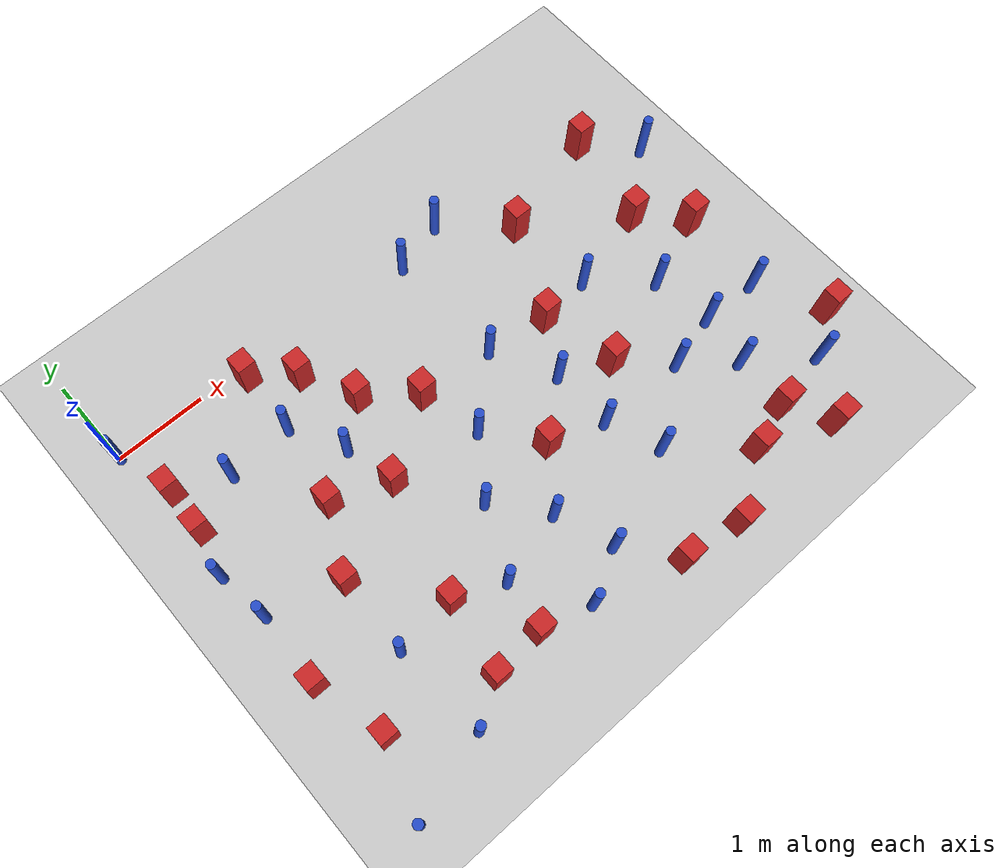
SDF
<sdf version="1.6">
 <world name="default">
  <model name="ground_plane">
   <static>1</static>
   <link name="link">
    <collision name="collision">
     <geometry><plane><normal>0 0 1</normal><size>100 100</size></plane></geometry>
     <surface><friction><ode><mu>100</mu><mu2>50</mu2></ode></friction></surface>
    </collision>
    <visual name="visual">
     <cast_shadows>0</cast_shadows>
     <geometry><plane><normal>0 0 1</normal><size>100 100</size></plane></geometry>
     <material>
      <ambient>1.0 1.0 1.0 1.0</ambient>
      <diffuse>0.8 0.8 0.8 1.0</diffuse>
      <specular>0.01 0.01 0.01 1.000000</specular>
     </material>
    </visual>
   </link>
  </model>
  <model name="NamedLocations">
   <static>true</static>
   <link name="DefaultStart"><pose>8.5 0 0 0 0 3.14</pose></link>
  </model>
  <model name="square_post_obstacle6">
   <static>true</static>
   <pose>0.93513681308 -2.43418573945 8.22691968438e-08 7.2212513382e-06 -7.54495500217e-07 2.29674213826e-05</pose>
   <link name="link">
    <pose>0 0 0.25 0 -0 0</pose>
    <inertial>
     <mass>100</mass>
     <inertia>
      <ixx>0.166667</ixx>
      <ixy>0</ixy>
      <ixz>0</ixz>
      <iyy>0.166667</iyy>
      <iyz>0</iyz>
      <izz>0.166667</izz>
     </inertia>
    </inertial>
    <collision name="collision"><geometry><box><size>.2 .2 .5</size></box></geometry></collision>
    <visual name="visual">
     <geometry><box><size>.2 .2 .5</size></box></geometry>
     <material>
      <script><name>Gazebo/Red</name><uri>file://media/materials/scripts/gazebo.material</uri></script>
     </material>
    </visual>
   </link>
  </model>
  <model name="square_post_obstacle8">
   <static>true</static>
   <pose>5.34493941089 -3.87671803789 8.22691968438e-08 7.2212513382e-06 -7.54495500217e-07 2.29674213826e-05</pose>
   <link name="link">
    <pose>0 0 0.25 0 -0 0</pose>
    <inertial>
     <mass>100</mass>
     <inertia>
      <ixx>0.166667</ixx>
      <ixy>0</ixy>
      <ixz>0</ixz>
      <iyy>0.166667</iyy>
      <iyz>0</iyz>
      <izz>0.166667</izz>
     </inertia>
    </inertial>
    <collision name="collision"><geometry><box><size>.2 .2 .5</size></box></geometry></collision>
    <visual name="visual">
     <geometry><box><size>.2 .2 .5</size></box></geometry>
     <material>
      <script><name>Gazebo/Red</name><uri>file://media/materials/scripts/gazebo.material</uri></script>
     </material>
    </visual>
   </link>
  </model>
  <model name="pole_obstacle9">
   <static>true</static>
   <pose>4.87138048898 -2.88604429344 2.88873142074e-08 -9.90536690245e-09 4.6021994898e-07 -1.20965994966e-07</pose>
   <link name="link">
    <pose>0 0 0.3 0 -0 0</pose>
    <inertial>
     <mass>1</mass>
     <inertia><ixx>0.145833</ixx><ixy>0</ixy><ixz>0</ixz><iyy>0.145833</iyy><iyz>0</iyz><izz>0.125</izz></inertia>
    </inertial>
    <collision name="collision">
     <geometry><cylinder><radius>0.05</radius><length>.6</length></cylinder></geometry>
    </collision>
    <visual name="visual">
     <geometry><cylinder><radius>0.05</radius><length>.6</length></cylinder></geometry>
     <material>
      <script><name>Gazebo/Blue</name><uri>file://media/materials/scripts/gazebo.material</uri></script>
     </material>
    </visual>
   </link>
  </model>
  <model name="pole_obstacle10">
   <static>true</static>
   <pose>6.10980867585 -2.7485158446 2.88873142074e-08 -9.90536690245e-09 4.6021994898e-07 -1.20965994966e-07</pose>
   <link name="link">
    <pose>0 0 0.3 0 -0 0</pose>
    <inertial>
     <mass>1</mass>
     <inertia><ixx>0.145833</ixx><ixy>0</ixy><ixz>0</ixz><iyy>0.145833</iyy><iyz>0</iyz><izz>0.125</izz></inertia>
    </inertial>
    <collision name="collision">
     <geometry><cylinder><radius>0.05</radius><length>.6</length></cylinder></geometry>
    </collision>
    <visual name="visual">
     <geometry><cylinder><radius>0.05</radius><length>.6</length></cylinder></geometry>
     <material>
      <script><name>Gazebo/Blue</name><uri>file://media/materials/scripts/gazebo.material</uri></script>
     </material>
    </visual>
   </link>
  </model>
  <model name="square_post_obstacle20">
   <static>true</static>
   <pose>1.49326711323 -0.159782868147 8.22691968438e-08 7.2212513382e-06 -7.54495500217e-07 2.29674213826e-05</pose>
   <link name="link">
    <pose>0 0 0.25 0 -0 0</pose>
    <inertial>
     <mass>100</mass>
     <inertia>
      <ixx>0.166667</ixx>
      <ixy>0</ixy>
      <ixz>0</ixz>
      <iyy>0.166667</iyy>
      <iyz>0</iyz>
      <izz>0.166667</izz>
     </inertia>
    </inertial>
    <collision name="collision"><geometry><box><size>.2 .2 .5</size></box></geometry></collision>
    <visual name="visual">
     <geometry><box><size>.2 .2 .5</size></box></geometry>
     <material>
      <script><name>Gazebo/Red</name><uri>file://media/materials/scripts/gazebo.material</uri></script>
     </material>
    </visual>
   </link>
  </model>
  <model name="square_post_obstacle22">
   <static>true</static>
   <pose>2.69886987106 -1.46428142879 8.22691968438e-08 7.2212513382e-06 -7.54495500217e-07 2.29674213826e-05</pose>
   <link name="link">
    <pose>0 0 0.25 0 -0 0</pose>
    <inertial>
     <mass>100</mass>
     <inertia>
      <ixx>0.166667</ixx>
      <ixy>0</ixy>
      <ixz>0</ixz>
      <iyy>0.166667</iyy>
      <iyz>0</iyz>
      <izz>0.166667</izz>
     </inertia>
    </inertial>
    <collision name="collision"><geometry><box><size>.2 .2 .5</size></box></geometry></collision>
    <visual name="visual">
     <geometry><box><size>.2 .2 .5</size></box></geometry>
     <material>
      <script><name>Gazebo/Red</name><uri>file://media/materials/scripts/gazebo.material</uri></script>
     </material>
    </visual>
   </link>
  </model>
  <model name="pole_obstacle17">
   <static>true</static>
   <pose>3.87363410356 -2.19998367693 2.88873142074e-08 -9.90536690232e-09 4.6021994898e-07 -1.20965994968e-07</pose>
   <link name="link">
    <pose>0 0 0.3 0 -0 0</pose>
    <inertial>
     <mass>1</mass>
     <inertia><ixx>0.145833</ixx><ixy>0</ixy><ixz>0</ixz><iyy>0.145833</iyy><iyz>0</iyz><izz>0.125</izz></inertia>
    </inertial>
    <collision name="collision">
     <geometry><cylinder><radius>0.05</radius><length>.6</length></cylinder></geometry>
    </collision>
    <visual name="visual">
     <geometry><cylinder><radius>0.05</radius><length>.6</length></cylinder></geometry>
     <material>
      <script><name>Gazebo/Blue</name><uri>file://media/materials/scripts/gazebo.material</uri></script>
     </material>
    </visual>
   </link>
  </model>
  <model name="square_post_obstacle25">
   <static>true</static>
   <pose>0.1925885914 -1.1519375086 8.22691968438e-08 7.2212513382e-06 -7.54495500217e-07 2.29674213826e-05</pose>
   <link name="link">
    <pose>0 0 0.25 0 -0 0</pose>
    <inertial>
     <mass>100</mass>
     <inertia>
      <ixx>0.166667</ixx>
      <ixy>0</ixy>
      <ixz>0</ixz>
      <iyy>0.166667</iyy>
      <iyz>0</iyz>
      <izz>0.166667</izz>
     </inertia>
    </inertial>
    <collision name="collision"><geometry><box><size>.2 .2 .5</size></box></geometry></collision>
    <visual name="visual">
     <geometry><box><size>.2 .2 .5</size></box></geometry>
     <material>
      <script><name>Gazebo/Red</name><uri>file://media/materials/scripts/gazebo.material</uri></script>
     </material>
    </visual>
   </link>
  </model>
  <model name="square_post_obstacle26">
   <static>true</static>
   <pose>6.16501732974 -1.77834047875 8.22691968438e-08 7.2212513382e-06 -7.54495500217e-07 2.29674213826e-05</pose>
   <link name="link">
    <pose>0 0 0.25 0 -0 0</pose>
    <inertial>
     <mass>100</mass>
     <inertia>
      <ixx>0.166667</ixx>
      <ixy>0</ixy>
      <ixz>0</ixz>
      <iyy>0.166667</iyy>
      <iyz>0</iyz>
      <izz>0.166667</izz>
     </inertia>
    </inertial>
    <collision name="collision"><geometry><box><size>.2 .2 .5</size></box></geometry></collision>
    <visual name="visual">
     <geometry><box><size>.2 .2 .5</size></box></geometry>
     <material>
      <script><name>Gazebo/Red</name><uri>file://media/materials/scripts/gazebo.material</uri></script>
     </material>
    </visual>
   </link>
  </model>
  <model name="pole_obstacle18">
   <static>true</static>
   <pose>5.37515510061 -3.29190504266 2.88873142074e-08 -9.90536690245e-09 4.6021994898e-07 -1.20965994966e-07</pose>
   <link name="link">
    <pose>0 0 0.3 0 -0 0</pose>
    <inertial>
     <mass>1</mass>
     <inertia><ixx>0.145833</ixx><ixy>0</ixy><ixz>0</ixz><iyy>0.145833</iyy><iyz>0</iyz><izz>0.125</izz></inertia>
    </inertial>
    <collision name="collision">
     <geometry><cylinder><radius>0.05</radius><length>.6</length></cylinder></geometry>
    </collision>
    <visual name="visual">
     <geometry><cylinder><radius>0.05</radius><length>.6</length></cylinder></geometry>
     <material>
      <script><name>Gazebo/Blue</name><uri>file://media/materials/scripts/gazebo.material</uri></script>
     </material>
    </visual>
   </link>
  </model>
  <model name="pole_obstacle19">
   <static>true</static>
   <pose>2.42500723776 -2.72046479892 2.88873142074e-08 -9.90536690232e-09 4.6021994898e-07 -1.20965994968e-07</pose>
   <link name="link">
    <pose>0 0 0.3 0 -0 0</pose>
    <inertial>
     <mass>1</mass>
     <inertia><ixx>0.145833</ixx><ixy>0</ixy><ixz>0</ixz><iyy>0.145833</iyy><iyz>0</iyz><izz>0.125</izz></inertia>
    </inertial>
    <collision name="collision">
     <geometry><cylinder><radius>0.05</radius><length>.6</length></cylinder></geometry>
    </collision>
    <visual name="visual">
     <geometry><cylinder><radius>0.05</radius><length>.6</length></cylinder></geometry>
     <material>
      <script><name>Gazebo/Blue</name><uri>file://media/materials/scripts/gazebo.material</uri></script>
     </material>
    </visual>
   </link>
  </model>
  <model name="pole_obstacle21">
   <static>true</static>
   <pose>4.80113946811 -1.57781946687 2.88873142074e-08 -9.90536689445e-09 4.60219948999e-07 -1.20965994956e-07</pose>
   <link name="link">
    <pose>0 0 0.3 0 -0 0</pose>
    <inertial>
     <mass>1</mass>
     <inertia><ixx>0.145833</ixx><ixy>0</ixy><ixz>0</ixz><iyy>0.145833</iyy><iyz>0</iyz><izz>0.125</izz></inertia>
    </inertial>
    <collision name="collision">
     <geometry><cylinder><radius>0.05</radius><length>.6</length></cylinder></geometry>
    </collision>
    <visual name="visual">
     <geometry><cylinder><radius>0.05</radius><length>.6</length></cylinder></geometry>
     <material>
      <script><name>Gazebo/Blue</name><uri>file://media/materials/scripts/gazebo.material</uri></script>
     </material>
    </visual>
   </link>
  </model>
  <model name="pole_obstacle27">
   <static>true</static>
   <pose>5.38458817801 -2.08544211234 2.88873142074e-08 -9.90536690245e-09 4.6021994898e-07 -1.20965994966e-07</pose>
   <link name="link">
    <pose>0 0 0.3 0 -0 0</pose>
    <inertial>
     <mass>1</mass>
     <inertia><ixx>0.145833</ixx><ixy>0</ixy><ixz>0</ixz><iyy>0.145833</iyy><iyz>0</iyz><izz>0.125</izz></inertia>
    </inertial>
    <collision name="collision">
     <geometry><cylinder><radius>0.05</radius><length>.6</length></cylinder></geometry>
    </collision>
    <visual name="visual">
     <geometry><cylinder><radius>0.05</radius><length>.6</length></cylinder></geometry>
     <material>
      <script><name>Gazebo/Blue</name><uri>file://media/materials/scripts/gazebo.material</uri></script>
     </material>
    </visual>
   </link>
  </model>
  <model name="square_post_obstacle33">
   <static>true</static>
   <pose>4.21194418895 -1.62396799592 8.22691968438e-08 7.2212513382e-06 -7.54495500217e-07 2.29674213826e-05</pose>
   <link name="link">
    <pose>0 0 0.25 0 -0 0</pose>
    <inertial>
     <mass>100</mass>
     <inertia>
      <ixx>0.166667</ixx>
      <ixy>0</ixy>
      <ixz>0</ixz>
      <iyy>0.166667</iyy>
      <iyz>0</iyz>
      <izz>0.166667</izz>
     </inertia>
    </inertial>
    <collision name="collision"><geometry><box><size>.2 .2 .5</size></box></geometry></collision>
    <visual name="visual">
     <geometry><box><size>.2 .2 .5</size></box></geometry>
     <material>
      <script><name>Gazebo/Red</name><uri>file://media/materials/scripts/gazebo.material</uri></script>
     </material>
    </visual>
   </link>
  </model>
  <model name="square_post_obstacle34">
   <static>true</static>
   <pose>0.130823815018 -2.98307924223 8.22691968438e-08 7.2212513382e-06 -7.54495500217e-07 2.29674213826e-05</pose>
   <link name="link">
    <pose>0 0 0.25 0 -0 0</pose>
    <inertial>
     <mass>100</mass>
     <inertia>
      <ixx>0.166667</ixx>
      <ixy>0</ixy>
      <ixz>0</ixz>
      <iyy>0.166667</iyy>
      <iyz>0</iyz>
      <izz>0.166667</izz>
     </inertia>
    </inertial>
    <collision name="collision"><geometry><box><size>.2 .2 .5</size></box></geometry></collision>
    <visual name="visual">
     <geometry><box><size>.2 .2 .5</size></box></geometry>
     <material>
      <script><name>Gazebo/Red</name><uri>file://media/materials/scripts/gazebo.material</uri></script>
     </material>
    </visual>
   </link>
  </model>
  <model name="square_post_obstacle40">
   <static>true</static>
   <pose>1.90374852456 -0.499919608732 8.22691968438e-08 7.2212513382e-06 -7.54495500217e-07 2.29674213826e-05</pose>
   <link name="link">
    <pose>0 0 0.25 0 -0 0</pose>
    <inertial>
     <mass>100</mass>
     <inertia>
      <ixx>0.166667</ixx>
      <ixy>0</ixy>
      <ixz>0</ixz>
      <iyy>0.166667</iyy>
      <iyz>0</iyz>
      <izz>0.166667</izz>
     </inertia>
    </inertial>
    <collision name="collision"><geometry><box><size>.2 .2 .5</size></box></geometry></collision>
    <visual name="visual">
     <geometry><box><size>.2 .2 .5</size></box></geometry>
     <material>
      <script><name>Gazebo/Red</name><uri>file://media/materials/scripts/gazebo.material</uri></script>
     </material>
    </visual>
   </link>
  </model>
  <model name="pole_obstacle45">
   <static>true</static>
   <pose>0.747380755248 -0.908569419054 2.88873142074e-08 -9.90536689967e-09 4.60219948986e-07 -1.20965994963e-07</pose>
   <link name="link">
    <pose>0 0 0.3 0 -0 0</pose>
    <inertial>
     <mass>1</mass>
     <inertia><ixx>0.145833</ixx><ixy>0</ixy><ixz>0</ixz><iyy>0.145833</iyy><iyz>0</iyz><izz>0.125</izz></inertia>
    </inertial>
    <collision name="collision">
     <geometry><cylinder><radius>0.05</radius><length>.6</length></cylinder></geometry>
    </collision>
    <visual name="visual">
     <geometry><cylinder><radius>0.05</radius><length>.6</length></cylinder></geometry>
     <material>
      <script><name>Gazebo/Blue</name><uri>file://media/materials/scripts/gazebo.material</uri></script>
     </material>
    </visual>
   </link>
  </model>
  <model name="square_post_obstacle42">
   <static>true</static>
   <pose>4.83294932148 -4.03773249772 8.22691968438e-08 7.2212513382e-06 -7.54495500217e-07 2.29674213826e-05</pose>
   <link name="link">
    <pose>0 0 0.25 0 -0 0</pose>
    <inertial>
     <mass>100</mass>
     <inertia>
      <ixx>0.166667</ixx>
      <ixy>0</ixy>
      <ixz>0</ixz>
      <iyy>0.166667</iyy>
      <iyz>0</iyz>
      <izz>0.166667</izz>
     </inertia>
    </inertial>
    <collision name="collision"><geometry><box><size>.2 .2 .5</size></box></geometry></collision>
    <visual name="visual">
     <geometry><box><size>.2 .2 .5</size></box></geometry>
     <material>
      <script><name>Gazebo/Red</name><uri>file://media/materials/scripts/gazebo.material</uri></script>
     </material>
    </visual>
   </link>
  </model>
  <model name="square_post_obstacle48">
   <static>true</static>
   <pose>6.49344892097 -3.45051704758 8.22691968438e-08 7.2212513382e-06 -7.54495500217e-07 2.29674213826e-05</pose>
   <link name="link">
    <pose>0 0 0.25 0 -0 0</pose>
    <inertial>
     <mass>100</mass>
     <inertia>
      <ixx>0.166667</ixx>
      <ixy>0</ixy>
      <ixz>0</ixz>
      <iyy>0.166667</iyy>
      <iyz>0</iyz>
      <izz>0.166667</izz>
     </inertia>
    </inertial>
    <collision name="collision"><geometry><box><size>.2 .2 .5</size></box></geometry></collision>
    <visual name="visual">
     <geometry><box><size>.2 .2 .5</size></box></geometry>
     <material>
      <script><name>Gazebo/Red</name><uri>file://media/materials/scripts/gazebo.material</uri></script>
     </material>
    </visual>
   </link>
  </model>
  <model name="square_post_obstacle54">
   <static>true</static>
   <pose>4.70827987012 -0.625084659395 8.22691968438e-08 7.2212513382e-06 -7.54495500217e-07 2.29674213826e-05</pose>
   <link name="link">
    <pose>0 0 0.25 0 -0 0</pose>
    <inertial>
     <mass>100</mass>
     <inertia>
      <ixx>0.166667</ixx>
      <ixy>0</ixy>
      <ixz>0</ixz>
      <iyy>0.166667</iyy>
      <iyz>0</iyz>
      <izz>0.166667</izz>
     </inertia>
    </inertial>
    <collision name="collision"><geometry><box><size>.2 .2 .5</size></box></geometry></collision>
    <visual name="visual">
     <geometry><box><size>.2 .2 .5</size></box></geometry>
     <material>
      <script><name>Gazebo/Red</name><uri>file://media/materials/scripts/gazebo.material</uri></script>
     </material>
    </visual>
   </link>
  </model>
  <model name="pole_obstacle56">
   <static>true</static>
   <pose>0.070392849277 -1.64936390731 2.88873142074e-08 -9.9053668989e-09 4.60219948988e-07 -1.20965994962e-07</pose>
   <link name="link">
    <pose>0 0 0.3 0 -0 0</pose>
    <inertial>
     <mass>1</mass>
     <inertia><ixx>0.145833</ixx><ixy>0</ixy><ixz>0</ixz><iyy>0.145833</iyy><iyz>0</iyz><izz>0.125</izz></inertia>
    </inertial>
    <collision name="collision">
     <geometry><cylinder><radius>0.05</radius><length>.6</length></cylinder></geometry>
    </collision>
    <visual name="visual">
     <geometry><cylinder><radius>0.05</radius><length>.6</length></cylinder></geometry>
     <material>
      <script><name>Gazebo/Blue</name><uri>file://media/materials/scripts/gazebo.material</uri></script>
     </material>
    </visual>
   </link>
  </model>
  <model name="pole_obstacle57">
   <static>true</static>
   <pose>2.84828007704 -3.24106414899 2.88873142074e-08 -9.90536690232e-09 4.6021994898e-07 -1.20965994968e-07</pose>
   <link name="link">
    <pose>0 0 0.3 0 -0 0</pose>
    <inertial>
     <mass>1</mass>
     <inertia><ixx>0.145833</ixx><ixy>0</ixy><ixz>0</ixz><iyy>0.145833</iyy><iyz>0</iyz><izz>0.125</izz></inertia>
    </inertial>
    <collision name="collision">
     <geometry><cylinder><radius>0.05</radius><length>.6</length></cylinder></geometry>
    </collision>
    <visual name="visual">
     <geometry><cylinder><radius>0.05</radius><length>.6</length></cylinder></geometry>
     <material>
      <script><name>Gazebo/Blue</name><uri>file://media/materials/scripts/gazebo.material</uri></script>
     </material>
    </visual>
   </link>
  </model>
  <model name="square_post_obstacle64">
   <static>true</static>
   <pose>1.9025964745 -1.9742124731 8.22691968438e-08 7.2212513382e-06 -7.54495500217e-07 2.29674213826e-05</pose>
   <link name="link">
    <pose>0 0 0.25 0 -0 0</pose>
    <inertial>
     <mass>100</mass>
     <inertia>
      <ixx>0.166667</ixx>
      <ixy>0</ixy>
      <ixz>0</ixz>
      <iyy>0.166667</iyy>
      <iyz>0</iyz>
      <izz>0.166667</izz>
     </inertia>
    </inertial>
    <collision name="collision"><geometry><box><size>.2 .2 .5</size></box></geometry></collision>
    <visual name="visual">
     <geometry><box><size>.2 .2 .5</size></box></geometry>
     <material>
      <script><name>Gazebo/Red</name><uri>file://media/materials/scripts/gazebo.material</uri></script>
     </material>
    </visual>
   </link>
  </model>
  <model name="pole_obstacle66">
   <static>true</static>
   <pose>0.903014752613 -3.28017848834 2.88873142074e-08 -9.90536689636e-09 4.60219948994e-07 -1.20965994958e-07</pose>
   <link name="link">
    <pose>0 0 0.3 0 -0 0</pose>
    <inertial>
     <mass>1</mass>
     <inertia><ixx>0.145833</ixx><ixy>0</ixy><ixz>0</ixz><iyy>0.145833</iyy><iyz>0</iyz><izz>0.125</izz></inertia>
    </inertial>
    <collision name="collision">
     <geometry><cylinder><radius>0.05</radius><length>.6</length></cylinder></geometry>
    </collision>
    <visual name="visual">
     <geometry><cylinder><radius>0.05</radius><length>.6</length></cylinder></geometry>
     <material>
      <script><name>Gazebo/Blue</name><uri>file://media/materials/scripts/gazebo.material</uri></script>
     </material>
    </visual>
   </link>
  </model>
  <model name="square_post_obstacle74">
   <static>true</static>
   <pose>3.49549920523 -4.35889515165 8.22691968438e-08 7.22125133819e-06 -7.54495500217e-07 2.29674213826e-05</pose>
   <link name="link">
    <pose>0 0 0.25 0 -0 0</pose>
    <inertial>
     <mass>100</mass>
     <inertia>
      <ixx>0.166667</ixx>
      <ixy>0</ixy>
      <ixz>0</ixz>
      <iyy>0.166667</iyy>
      <iyz>0</iyz>
      <izz>0.166667</izz>
     </inertia>
    </inertial>
    <collision name="collision"><geometry><box><size>.2 .2 .5</size></box></geometry></collision>
    <visual name="visual">
     <geometry><box><size>.2 .2 .5</size></box></geometry>
     <material>
      <script><name>Gazebo/Red</name><uri>file://media/materials/scripts/gazebo.material</uri></script>
     </material>
    </visual>
   </link>
  </model>
  <model name="square_post_obstacle76">
   <static>true</static>
   <pose>1.99563817938 -3.95927341196 8.22691968438e-08 7.22125133819e-06 -7.54495500217e-07 2.29674213826e-05</pose>
   <link name="link">
    <pose>0 0 0.25 0 -0 0</pose>
    <inertial>
     <mass>100</mass>
     <inertia>
      <ixx>0.166667</ixx>
      <ixy>0</ixy>
      <ixz>0</ixz>
      <iyy>0.166667</iyy>
      <iyz>0</iyz>
      <izz>0.166667</izz>
     </inertia>
    </inertial>
    <collision name="collision"><geometry><box><size>.2 .2 .5</size></box></geometry></collision>
    <visual name="visual">
     <geometry><box><size>.2 .2 .5</size></box></geometry>
     <material>
      <script><name>Gazebo/Red</name><uri>file://media/materials/scripts/gazebo.material</uri></script>
     </material>
    </visual>
   </link>
  </model>
  <model name="pole_obstacle73">
   <static>true</static>
   <pose>1.76431207199 -1.42830847453 2.88873142074e-08 -9.90536689672e-09 4.60219948993e-07 -1.20965994959e-07</pose>
   <link name="link">
    <pose>0 0 0.3 0 -0 0</pose>
    <inertial>
     <mass>1</mass>
     <inertia><ixx>0.145833</ixx><ixy>0</ixy><ixz>0</ixz><iyy>0.145833</iyy><iyz>0</iyz><izz>0.125</izz></inertia>
    </inertial>
    <collision name="collision">
     <geometry><cylinder><radius>0.05</radius><length>.6</length></cylinder></geometry>
    </collision>
    <visual name="visual">
     <geometry><cylinder><radius>0.05</radius><length>.6</length></cylinder></geometry>
     <material>
      <script><name>Gazebo/Blue</name><uri>file://media/materials/scripts/gazebo.material</uri></script>
     </material>
    </visual>
   </link>
  </model>
  <model name="pole_obstacle81">
   <static>true</static>
   <pose>3.48802088363 -0.209020951684 2.88873142074e-08 -9.90536692243e-09 4.60219948932e-07 -1.20965994987e-07</pose>
   <link name="link">
    <pose>0 0 0.3 0 -0 0</pose>
    <inertial>
     <mass>1</mass>
     <inertia><ixx>0.145833</ixx><ixy>0</ixy><ixz>0</ixz><iyy>0.145833</iyy><iyz>0</iyz><izz>0.125</izz></inertia>
    </inertial>
    <collision name="collision">
     <geometry><cylinder><radius>0.05</radius><length>.6</length></cylinder></geometry>
    </collision>
    <visual name="visual">
     <geometry><cylinder><radius>0.05</radius><length>.6</length></cylinder></geometry>
     <material>
      <script><name>Gazebo/Blue</name><uri>file://media/materials/scripts/gazebo.material</uri></script>
     </material>
    </visual>
   </link>
  </model>
  <model name="pole_obstacle92">
   <static>true</static>
   <pose>0.0717114733378 -4.53419679328 2.88873142074e-08 -9.90536689856e-09 4.60219948989e-07 -1.20965994961e-07</pose>
   <link name="link">
    <pose>0 0 0.3 0 -0 0</pose>
    <inertial>
     <mass>1</mass>
     <inertia><ixx>0.145833</ixx><ixy>0</ixy><ixz>0</ixz><iyy>0.145833</iyy><iyz>0</iyz><izz>0.125</izz></inertia>
    </inertial>
    <collision name="collision">
     <geometry><cylinder><radius>0.05</radius><length>.6</length></cylinder></geometry>
    </collision>
    <visual name="visual">
     <geometry><cylinder><radius>0.05</radius><length>.6</length></cylinder></geometry>
     <material>
      <script><name>Gazebo/Blue</name><uri>file://media/materials/scripts/gazebo.material</uri></script>
     </material>
    </visual>
   </link>
  </model>
  <model name="square_post_obstacle83">
   <static>true</static>
   <pose>0.330089260909 -3.74944186286 8.22691968438e-08 7.22125133819e-06 -7.54495500217e-07 2.29674213826e-05</pose>
   <link name="link">
    <pose>0 0 0.25 0 -0 0</pose>
    <inertial>
     <mass>100</mass>
     <inertia>
      <ixx>0.166667</ixx>
      <ixy>0</ixy>
      <ixz>0</ixz>
      <iyy>0.166667</iyy>
      <iyz>0</iyz>
      <izz>0.166667</izz>
     </inertia>
    </inertial>
    <collision name="collision"><geometry><box><size>.2 .2 .5</size></box></geometry></collision>
    <visual name="visual">
     <geometry><box><size>.2 .2 .5</size></box></geometry>
     <material>
      <script><name>Gazebo/Red</name><uri>file://media/materials/scripts/gazebo.material</uri></script>
     </material>
    </visual>
   </link>
  </model>
  <model name="pole_obstacle101">
   <static>true</static>
   <pose>0.152303115265 -2.21654260974 2.88873142074e-08 -9.90536692387e-09 4.60219948929e-07 -1.20965994988e-07</pose>
   <link name="link">
    <pose>0 0 0.3 0 -0 0</pose>
    <inertial>
     <mass>1</mass>
     <inertia><ixx>0.145833</ixx><ixy>0</ixy><ixz>0</ixz><iyy>0.145833</iyy><iyz>0</iyz><izz>0.125</izz></inertia>
    </inertial>
    <collision name="collision">
     <geometry><cylinder><radius>0.05</radius><length>.6</length></cylinder></geometry>
    </collision>
    <visual name="visual">
     <geometry><cylinder><radius>0.05</radius><length>.6</length></cylinder></geometry>
     <material>
      <script><name>Gazebo/Blue</name><uri>file://media/materials/scripts/gazebo.material</uri></script>
     </material>
    </visual>
   </link>
  </model>
  <model name="pole_obstacle102">
   <static>true</static>
   <pose>3.52672903123 -1.53772527087 2.88873142074e-08 -9.90536689395e-09 4.60219949e-07 -1.20965994953e-07</pose>
   <link name="link">
    <pose>0 0 0.3 0 -0 0</pose>
    <inertial>
     <mass>1</mass>
     <inertia><ixx>0.145833</ixx><ixy>0</ixy><ixz>0</ixz><iyy>0.145833</iyy><iyz>0</iyz><izz>0.125</izz></inertia>
    </inertial>
    <collision name="collision">
     <geometry><cylinder><radius>0.05</radius><length>.6</length></cylinder></geometry>
    </collision>
    <visual name="visual">
     <geometry><cylinder><radius>0.05</radius><length>.6</length></cylinder></geometry>
     <material>
      <script><name>Gazebo/Blue</name><uri>file://media/materials/scripts/gazebo.material</uri></script>
     </material>
    </visual>
   </link>
  </model>
  <model name="square_post_obstacle91">
   <static>true</static>
   <pose>4.3966903159 -2.42623786422 8.22691968438e-08 7.2212513382e-06 -7.54495500217e-07 2.29674213826e-05</pose>
   <link name="link">
    <pose>0 0 0.25 0 -0 0</pose>
    <inertial>
     <mass>100</mass>
     <inertia>
      <ixx>0.166667</ixx>
      <ixy>0</ixy>
      <ixz>0</ixz>
      <iyy>0.166667</iyy>
      <iyz>0</iyz>
      <izz>0.166667</izz>
     </inertia>
    </inertial>
    <collision name="collision"><geometry><box><size>.2 .2 .5</size></box></geometry></collision>
    <visual name="visual">
     <geometry><box><size>.2 .2 .5</size></box></geometry>
     <material>
      <script><name>Gazebo/Red</name><uri>file://media/materials/scripts/gazebo.material</uri></script>
     </material>
    </visual>
   </link>
  </model>
  <model name="pole_obstacle104">
   <static>true</static>
   <pose>0.982224950131 -4.28176323333 2.88873142074e-08 -9.90536689421e-09 4.60219948999e-07 -1.20965994953e-07</pose>
   <link name="link">
    <pose>0 0 0.3 0 -0 0</pose>
    <inertial>
     <mass>1</mass>
     <inertia><ixx>0.145833</ixx><ixy>0</ixy><ixz>0</ixz><iyy>0.145833</iyy><iyz>0</iyz><izz>0.125</izz></inertia>
    </inertial>
    <collision name="collision">
     <geometry><cylinder><radius>0.05</radius><length>.6</length></cylinder></geometry>
    </collision>
    <visual name="visual">
     <geometry><cylinder><radius>0.05</radius><length>.6</length></cylinder></geometry>
     <material>
      <script><name>Gazebo/Blue</name><uri>file://media/materials/scripts/gazebo.material</uri></script>
     </material>
    </visual>
   </link>
  </model>
  <model name="square_post_obstacle93">
   <static>true</static>
   <pose>0.210953410706 -0.651977775744 8.22691968438e-08 7.2212513382e-06 -7.54495500217e-07 2.29674213826e-05</pose>
   <link name="link">
    <pose>0 0 0.25 0 -0 0</pose>
    <inertial>
     <mass>100</mass>
     <inertia>
      <ixx>0.166667</ixx>
      <ixy>0</ixy>
      <ixz>0</ixz>
      <iyy>0.166667</iyy>
      <iyz>0</iyz>
      <izz>0.166667</izz>
     </inertia>
    </inertial>
    <collision name="collision"><geometry><box><size>.2 .2 .5</size></box></geometry></collision>
    <visual name="visual">
     <geometry><box><size>.2 .2 .5</size></box></geometry>
     <material>
      <script><name>Gazebo/Red</name><uri>file://media/materials/scripts/gazebo.material</uri></script>
     </material>
    </visual>
   </link>
  </model>
  <model name="pole_obstacle105">
   <static>true</static>
   <pose>3.06702081155 -3.84328702367 2.88873142074e-08 -9.90536690232e-09 4.6021994898e-07 -1.20965994968e-07</pose>
   <link name="link">
    <pose>0 0 0.3 0 -0 0</pose>
    <inertial>
     <mass>1</mass>
     <inertia><ixx>0.145833</ixx><ixy>0</ixy><ixz>0</ixz><iyy>0.145833</iyy><iyz>0</iyz><izz>0.125</izz></inertia>
    </inertial>
    <collision name="collision">
     <geometry><cylinder><radius>0.05</radius><length>.6</length></cylinder></geometry>
    </collision>
    <visual name="visual">
     <geometry><cylinder><radius>0.05</radius><length>.6</length></cylinder></geometry>
     <material>
      <script><name>Gazebo/Blue</name><uri>file://media/materials/scripts/gazebo.material</uri></script>
     </material>
    </visual>
   </link>
  </model>
  <model name="square_post_obstacle115">
   <static>true</static>
   <pose>1.29108428987 -1.73671378299 8.22691968438e-08 7.2212513382e-06 -7.54495500217e-07 2.29674213826e-05</pose>
   <link name="link">
    <pose>0 0 0.25 0 -0 0</pose>
    <inertial>
     <mass>100</mass>
     <inertia>
      <ixx>0.166667</ixx>
      <ixy>0</ixy>
      <ixz>0</ixz>
      <iyy>0.166667</iyy>
      <iyz>0</iyz>
      <izz>0.166667</izz>
     </inertia>
    </inertial>
    <collision name="collision"><geometry><box><size>.2 .2 .5</size></box></geometry></collision>
    <visual name="visual">
     <geometry><box><size>.2 .2 .5</size></box></geometry>
     <material>
      <script><name>Gazebo/Red</name><uri>file://media/materials/scripts/gazebo.material</uri></script>
     </material>
    </visual>
   </link>
  </model>
  <model name="pole_obstacle134">
   <static>true</static>
   <pose>4.06524627376 -0.0510833529383 2.88873142074e-08 -9.90536689836e-09 4.60219948989e-07 -1.20965994962e-07</pose>
   <link name="link">
    <pose>0 0 0.3 0 -0 0</pose>
    <inertial>
     <mass>1</mass>
     <inertia><ixx>0.145833</ixx><ixy>0</ixy><ixz>0</ixz><iyy>0.145833</iyy><iyz>0</iyz><izz>0.125</izz></inertia>
    </inertial>
    <collision name="collision">
     <geometry><cylinder><radius>0.05</radius><length>.6</length></cylinder></geometry>
    </collision>
    <visual name="visual">
     <geometry><cylinder><radius>0.05</radius><length>.6</length></cylinder></geometry>
     <material>
      <script><name>Gazebo/Blue</name><uri>file://media/materials/scripts/gazebo.material</uri></script>
     </material>
    </visual>
   </link>
  </model>
  <model name="square_post_obstacle124">
   <static>true</static>
   <pose>1.56789279347 -3.21831067892 8.22691968438e-08 7.2212513382e-06 -7.54495500217e-07 2.29674213826e-05</pose>
   <link name="link">
    <pose>0 0 0.25 0 -0 0</pose>
    <inertial>
     <mass>100</mass>
     <inertia>
      <ixx>0.166667</ixx>
      <ixy>0</ixy>
      <ixz>0</ixz>
      <iyy>0.166667</iyy>
      <iyz>0</iyz>
      <izz>0.166667</izz>
     </inertia>
    </inertial>
    <collision name="collision"><geometry><box><size>.2 .2 .5</size></box></geometry></collision>
    <visual name="visual">
     <geometry><box><size>.2 .2 .5</size></box></geometry>
     <material>
      <script><name>Gazebo/Red</name><uri>file://media/materials/scripts/gazebo.material</uri></script>
     </material>
    </visual>
   </link>
  </model>
  <model name="pole_obstacle147">
   <static>true</static>
   <pose>3.8818689171 -2.87183762366 2.88873142074e-08 -9.90536690232e-09 4.6021994898e-07 -1.20965994968e-07</pose>
   <link name="link">
    <pose>0 0 0.3 0 -0 0</pose>
    <inertial>
     <mass>1</mass>
     <inertia><ixx>0.145833</ixx><ixy>0</ixy><ixz>0</ixz><iyy>0.145833</iyy><iyz>0</iyz><izz>0.125</izz></inertia>
    </inertial>
    <collision name="collision">
     <geometry><cylinder><radius>0.05</radius><length>.6</length></cylinder></geometry>
    </collision>
    <visual name="visual">
     <geometry><cylinder><radius>0.05</radius><length>.6</length></cylinder></geometry>
     <material>
      <script><name>Gazebo/Blue</name><uri>file://media/materials/scripts/gazebo.material</uri></script>
     </material>
    </visual>
   </link>
  </model>
  <model name="pole_obstacle156">
   <static>true</static>
   <pose>2.53941003964 -4.11969180566 2.88873142074e-08 -9.90536689859e-09 4.60219948989e-07 -1.20965994961e-07</pose>
   <link name="link">
    <pose>0 0 0.3 0 -0 0</pose>
    <inertial>
     <mass>1</mass>
     <inertia><ixx>0.145833</ixx><ixy>0</ixy><ixz>0</ixz><iyy>0.145833</iyy><iyz>0</iyz><izz>0.125</izz></inertia>
    </inertial>
    <collision name="collision">
     <geometry><cylinder><radius>0.05</radius><length>.6</length></cylinder></geometry>
    </collision>
    <visual name="visual">
     <geometry><cylinder><radius>0.05</radius><length>.6</length></cylinder></geometry>
     <material>
      <script><name>Gazebo/Blue</name><uri>file://media/materials/scripts/gazebo.material</uri></script>
     </material>
    </visual>
   </link>
  </model>
  <model name="square_post_obstacle148">
   <static>true</static>
   <pose>4.16171078026 -4.4468660829 8.22691968438e-08 7.22125133819e-06 -7.54495500217e-07 2.29674213826e-05</pose>
   <link name="link">
    <pose>0 0 0.25 0 -0 0</pose>
    <inertial>
     <mass>100</mass>
     <inertia>
      <ixx>0.166667</ixx>
      <ixy>0</ixy>
      <ixz>0</ixz>
      <iyy>0.166667</iyy>
      <iyz>0</iyz>
      <izz>0.166667</izz>
     </inertia>
    </inertial>
    <collision name="collision"><geometry><box><size>.2 .2 .5</size></box></geometry></collision>
    <visual name="visual">
     <geometry><box><size>.2 .2 .5</size></box></geometry>
     <material>
      <script><name>Gazebo/Red</name><uri>file://media/materials/scripts/gazebo.material</uri></script>
     </material>
    </visual>
   </link>
  </model>
  <model name="square_post_obstacle149">
   <static>true</static>
   <pose>2.19370707433 -1.06528551084 8.22691968438e-08 7.2212513382e-06 -7.54495500217e-07 2.29674213826e-05</pose>
   <link name="link">
    <pose>0 0 0.25 0 -0 0</pose>
    <inertial>
     <mass>100</mass>
     <inertia>
      <ixx>0.166667</ixx>
      <ixy>0</ixy>
      <ixz>0</ixz>
      <iyy>0.166667</iyy>
      <iyz>0</iyz>
      <izz>0.166667</izz>
     </inertia>
    </inertial>
    <collision name="collision"><geometry><box><size>.2 .2 .5</size></box></geometry></collision>
    <visual name="visual">
     <geometry><box><size>.2 .2 .5</size></box></geometry>
     <material>
      <script><name>Gazebo/Red</name><uri>file://media/materials/scripts/gazebo.material</uri></script>
     </material>
    </visual>
   </link>
  </model>
  <model name="pole_obstacle158">
   <static>true</static>
   <pose>6.02373395332 -3.76789317465 2.88873142074e-08 -9.90536690245e-09 4.6021994898e-07 -1.20965994966e-07</pose>
   <link name="link">
    <pose>0 0 0.3 0 -0 0</pose>
    <inertial>
     <mass>1</mass>
     <inertia><ixx>0.145833</ixx><ixy>0</ixy><ixz>0</ixz><iyy>0.145833</iyy><iyz>0</iyz><izz>0.125</izz></inertia>
    </inertial>
    <collision name="collision">
     <geometry><cylinder><radius>0.05</radius><length>.6</length></cylinder></geometry>
    </collision>
    <visual name="visual">
     <geometry><cylinder><radius>0.05</radius><length>.6</length></cylinder></geometry>
     <material>
      <script><name>Gazebo/Blue</name><uri>file://media/materials/scripts/gazebo.material</uri></script>
     </material>
    </visual>
   </link>
  </model>
  <model name="pole_obstacle165">
   <static>true</static>
   <pose>1.45646815641 -0.868964532486 2.88873142074e-08 -9.90536689692e-09 4.60219948993e-07 -1.20965994958e-07</pose>
   <link name="link">
    <pose>0 0 0.3 0 -0 0</pose>
    <inertial>
     <mass>1</mass>
     <inertia><ixx>0.145833</ixx><ixy>0</ixy><ixz>0</ixz><iyy>0.145833</iyy><iyz>0</iyz><izz>0.125</izz></inertia>
    </inertial>
    <collision name="collision">
     <geometry><cylinder><radius>0.05</radius><length>.6</length></cylinder></geometry>
    </collision>
    <visual name="visual">
     <geometry><cylinder><radius>0.05</radius><length>.6</length></cylinder></geometry>
     <material>
      <script><name>Gazebo/Blue</name><uri>file://media/materials/scripts/gazebo.material</uri></script>
     </material>
    </visual>
   </link>
  </model>
  <model name="pole_obstacle168">
   <static>true</static>
   <pose>5.46982633678 -2.73229940086 2.88873142074e-08 -9.90536690245e-09 4.6021994898e-07 -1.20965994966e-07</pose>
   <link name="link">
    <pose>0 0 0.3 0 -0 0</pose>
    <inertial>
     <mass>1</mass>
     <inertia><ixx>0.145833</ixx><ixy>0</ixy><ixz>0</ixz><iyy>0.145833</iyy><iyz>0</iyz><izz>0.125</izz></inertia>
    </inertial>
    <collision name="collision">
     <geometry><cylinder><radius>0.05</radius><length>.6</length></cylinder></geometry>
    </collision>
    <visual name="visual">
     <geometry><cylinder><radius>0.05</radius><length>.6</length></cylinder></geometry>
     <material>
      <script><name>Gazebo/Blue</name><uri>file://media/materials/scripts/gazebo.material</uri></script>
     </material>
    </visual>
   </link>
  </model>
  <model name="square_post_obstacle162">
   <static>true</static>
   <pose>5.73417595443 -1.33211298041 8.22691968438e-08 7.2212513382e-06 -7.54495500217e-07 2.29674213826e-05</pose>
   <link name="link">
    <pose>0 0 0.25 0 -0 0</pose>
    <inertial>
     <mass>100</mass>
     <inertia>
      <ixx>0.166667</ixx>
      <ixy>0</ixy>
      <ixz>0</ixz>
      <iyy>0.166667</iyy>
      <iyz>0</iyz>
      <izz>0.166667</izz>
     </inertia>
    </inertial>
    <collision name="collision"><geometry><box><size>.2 .2 .5</size></box></geometry></collision>
    <visual name="visual">
     <geometry><box><size>.2 .2 .5</size></box></geometry>
     <material>
      <script><name>Gazebo/Red</name><uri>file://media/materials/scripts/gazebo.material</uri></script>
     </material>
    </visual>
   </link>
  </model>
  <model name="pole_obstacle177">
   <static>true</static>
   <pose>2.86191444428 -2.12509755492 2.88873142074e-08 -9.90536690232e-09 4.6021994898e-07 -1.20965994968e-07</pose>
   <link name="link">
    <pose>0 0 0.3 0 -0 0</pose>
    <inertial>
     <mass>1</mass>
     <inertia><ixx>0.145833</ixx><ixy>0</ixy><ixz>0</ixz><iyy>0.145833</iyy><iyz>0</iyz><izz>0.125</izz></inertia>
    </inertial>
    <collision name="collision">
     <geometry><cylinder><radius>0.05</radius><length>.6</length></cylinder></geometry>
    </collision>
    <visual name="visual">
     <geometry><cylinder><radius>0.05</radius><length>.6</length></cylinder></geometry>
     <material>
      <script><name>Gazebo/Blue</name><uri>file://media/materials/scripts/gazebo.material</uri></script>
     </material>
    </visual>
   </link>
  </model>
  <model name="square_post_obstacle174">
   <static>true</static>
   <pose>1.42958142499 -4.00565426266 8.22691968438e-08 7.2212513382e-06 -7.54495500217e-07 2.29674213826e-05</pose>
   <link name="link">
    <pose>0 0 0.25 0 -0 0</pose>
    <inertial>
     <mass>100</mass>
     <inertia>
      <ixx>0.166667</ixx>
      <ixy>0</ixy>
      <ixz>0</ixz>
      <iyy>0.166667</iyy>
      <iyz>0</iyz>
      <izz>0.166667</izz>
     </inertia>
    </inertial>
    <collision name="collision"><geometry><box><size>.2 .2 .5</size></box></geometry></collision>
    <visual name="visual">
     <geometry><box><size>.2 .2 .5</size></box></geometry>
     <material>
      <script><name>Gazebo/Red</name><uri>file://media/materials/scripts/gazebo.material</uri></script>
     </material>
    </visual>
   </link>
  </model>
  <model name="square_post_obstacle191">
   <static>true</static>
   <pose>5.93940751945 -0.29094014254 8.22691968438e-08 7.2212513382e-06 -7.54495500217e-07 2.29674213826e-05</pose>
   <link name="link">
    <pose>0 0 0.25 0 -0 0</pose>
    <inertial>
     <mass>100</mass>
     <inertia>
      <ixx>0.166667</ixx>
      <ixy>0</ixy>
      <ixz>0</ixz>
      <iyy>0.166667</iyy>
      <iyz>0</iyz>
      <izz>0.166667</izz>
     </inertia>
    </inertial>
    <collision name="collision"><geometry><box><size>.2 .2 .5</size></box></geometry></collision>
    <visual name="visual">
     <geometry><box><size>.2 .2 .5</size></box></geometry>
     <material>
      <script><name>Gazebo/Red</name><uri>file://media/materials/scripts/gazebo.material</uri></script>
     </material>
    </visual>
   </link>
  </model>
  <model name="square_post_obstacle197">
   <static>true</static>
   <pose>3.29921485058 -2.65934241936 8.22691968438e-08 7.2212513382e-06 -7.54495500217e-07 2.29674213826e-05</pose>
   <link name="link">
    <pose>0 0 0.25 0 -0 0</pose>
    <inertial>
     <mass>100</mass>
     <inertia>
      <ixx>0.166667</ixx>
      <ixy>0</ixy>
      <ixz>0</ixz>
      <iyy>0.166667</iyy>
      <iyz>0</iyz>
      <izz>0.166667</izz>
     </inertia>
    </inertial>
    <collision name="collision"><geometry><box><size>.2 .2 .5</size></box></geometry></collision>
    <visual name="visual">
     <geometry><box><size>.2 .2 .5</size></box></geometry>
     <material>
      <script><name>Gazebo/Red</name><uri>file://media/materials/scripts/gazebo.material</uri></script>
     </material>
    </visual>
   </link>
  </model>
  <model name="square_post_obstacle202">
   <static>true</static>
   <pose>5.62173157739 -4.34322070264 8.22691968438e-08 7.22125133819e-06 -7.54495500217e-07 2.29674213826e-05</pose>
   <link name="link">
    <pose>0 0 0.25 0 -0 0</pose>
    <inertial>
     <mass>100</mass>
     <inertia>
      <ixx>0.166667</ixx>
      <ixy>0</ixy>
      <ixz>0</ixz>
      <iyy>0.166667</iyy>
      <iyz>0</iyz>
      <izz>0.166667</izz>
     </inertia>
    </inertial>
    <collision name="collision"><geometry><box><size>.2 .2 .5</size></box></geometry></collision>
    <visual name="visual">
     <geometry><box><size>.2 .2 .5</size></box></geometry>
     <material>
      <script><name>Gazebo/Red</name><uri>file://media/materials/scripts/gazebo.material</uri></script>
     </material>
    </visual>
   </link>
  </model>
  <model name="pole_obstacle201">
   <static>true</static>
   <pose>4.10831432992 -3.43526588294 2.88873142074e-08 -9.90536690245e-09 4.6021994898e-07 -1.20965994966e-07</pose>
   <link name="link">
    <pose>0 0 0.3 0 -0 0</pose>
    <inertial>
     <mass>1</mass>
     <inertia><ixx>0.145833</ixx><ixy>0</ixy><ixz>0</ixz><iyy>0.145833</iyy><iyz>0</iyz><izz>0.125</izz></inertia>
    </inertial>
    <collision name="collision">
     <geometry><cylinder><radius>0.05</radius><length>.6</length></cylinder></geometry>
    </collision>
    <visual name="visual">
     <geometry><cylinder><radius>0.05</radius><length>.6</length></cylinder></geometry>
     <material>
      <script><name>Gazebo/Blue</name><uri>file://media/materials/scripts/gazebo.material</uri></script>
     </material>
    </visual>
   </link>
  </model>
  <model name="pole_obstacle207">
   <static>true</static>
   <pose>6.43383438574 -0.778968626934 2.88873142074e-08 -9.90536689837e-09 4.60219948989e-07 -1.2096599496e-07</pose>
   <link name="link">
    <pose>0 0 0.3 0 -0 0</pose>
    <inertial>
     <mass>1</mass>
     <inertia><ixx>0.145833</ixx><ixy>0</ixy><ixz>0</ixz><iyy>0.145833</iyy><iyz>0</iyz><izz>0.125</izz></inertia>
    </inertial>
    <collision name="collision">
     <geometry><cylinder><radius>0.05</radius><length>.6</length></cylinder></geometry>
    </collision>
    <visual name="visual">
     <geometry><cylinder><radius>0.05</radius><length>.6</length></cylinder></geometry>
     <material>
      <script><name>Gazebo/Blue</name><uri>file://media/materials/scripts/gazebo.material</uri></script>
     </material>
    </visual>
   </link>
  </model>
  <model name="pole_obstacle220">
   <static>true</static>
   <pose>0.0153269452491 -0.0246584579514 2.88873142074e-08 -9.90536690108e-09 4.60219948983e-07 -1.20965994964e-07</pose>
   <link name="link">
    <pose>0 0 0.3 0 -0 0</pose>
    <inertial>
     <mass>1</mass>
     <inertia><ixx>0.145833</ixx><ixy>0</ixy><ixz>0</ixz><iyy>0.145833</iyy><iyz>0</iyz><izz>0.125</izz></inertia>
    </inertial>
    <collision name="collision">
     <geometry><cylinder><radius>0.05</radius><length>.6</length></cylinder></geometry>
    </collision>
    <visual name="visual">
     <geometry><cylinder><radius>0.05</radius><length>.6</length></cylinder></geometry>
     <material>
      <script><name>Gazebo/Blue</name><uri>file://media/materials/scripts/gazebo.material</uri></script>
     </material>
    </visual>
   </link>
  </model>
  <model name="pole_obstacle224">
   <static>true</static>
   <pose>2.07554550961 -3.44187358313 2.88873142074e-08 -9.90536690232e-09 4.6021994898e-07 -1.20965994968e-07</pose>
   <link name="link">
    <pose>0 0 0.3 0 -0 0</pose>
    <inertial>
     <mass>1</mass>
     <inertia><ixx>0.145833</ixx><ixy>0</ixy><ixz>0</ixz><iyy>0.145833</iyy><iyz>0</iyz><izz>0.125</izz></inertia>
    </inertial>
    <collision name="collision">
     <geometry><cylinder><radius>0.05</radius><length>.6</length></cylinder></geometry>
    </collision>
    <visual name="visual">
     <geometry><cylinder><radius>0.05</radius><length>.6</length></cylinder></geometry>
     <material>
      <script><name>Gazebo/Blue</name><uri>file://media/materials/scripts/gazebo.material</uri></script>
     </material>
    </visual>
   </link>
  </model>
 </world>
</sdf>
